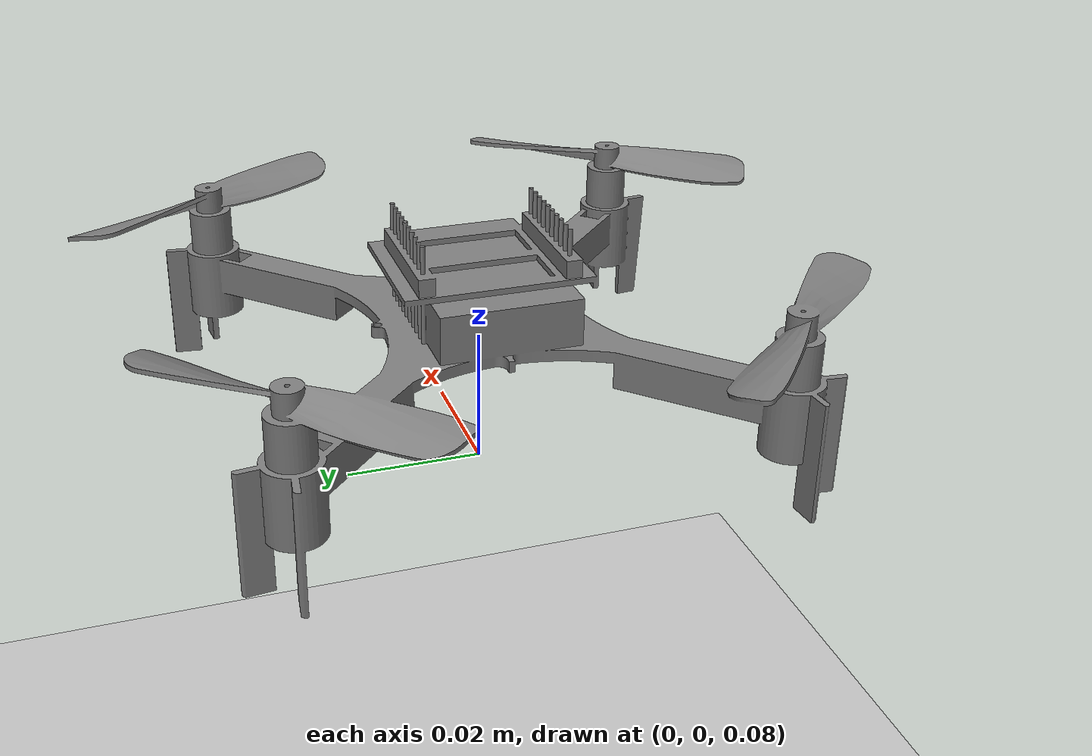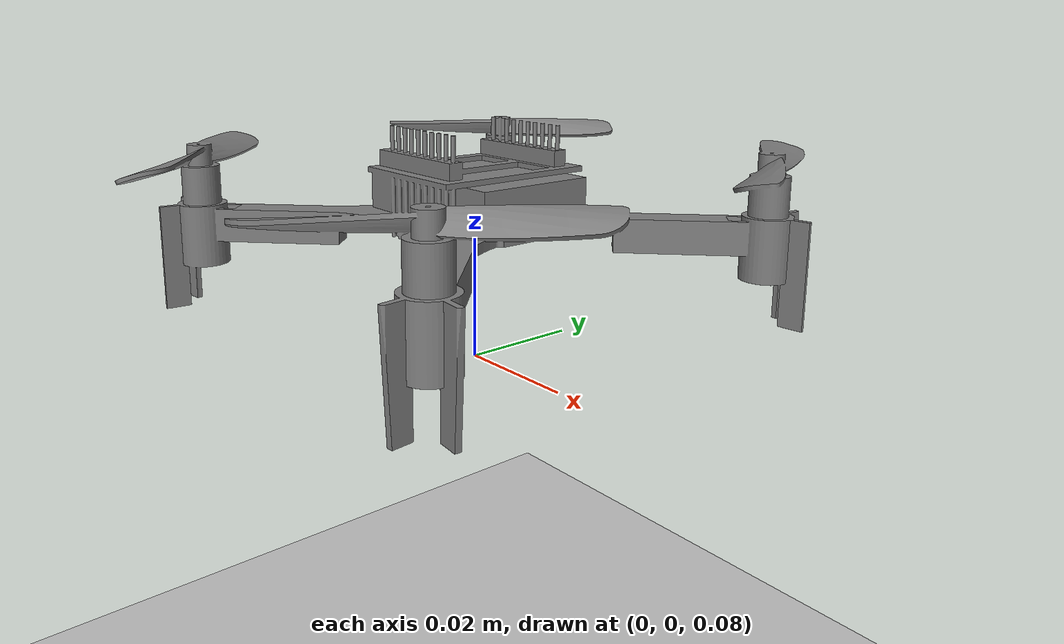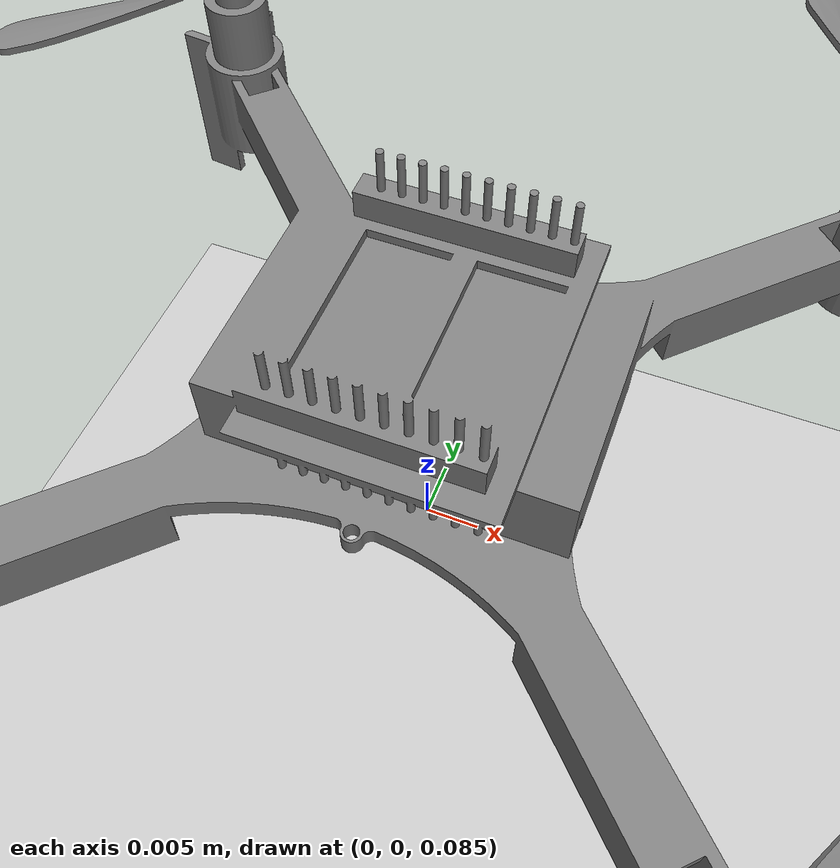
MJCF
<mujoco model="cf2x">

  <visual>
    <global offwidth="1280" offheight="720"/>
    <headlight diffuse="0.6 0.6 0.6" ambient="0.3 0.3 0.3" specular="0.0 0.0 0.0"/>
  </visual>

  <statistic center="0 0 0.1" extent="0.5"/>

  <option timestep="0.002" gravity="0 0 -9.81" integrator="RK4"/>

  <asset>
    <mesh name="cf2_mesh" file="cf2.stl" scale="1 1 1"/>

    <texture type="skybox" builtin="gradient"
             rgb1="0.4 0.6 0.8" rgb2="0.8 0.9 1.0"
             width="512" height="512"/>
    <texture name="grid" type="2d" builtin="checker"
             rgb1="0.7 0.7 0.7" rgb2="0.85 0.85 0.85"
             width="512" height="512"/>
    <material name="grid_mat" texture="grid"
              texrepeat="4 4" reflectance="0.1"/>
    <material name="drone_mat" rgba="0.5 0.5 0.5 1"
              specular="0.3" shininess="0.4"/>
  </asset>

  <worldbody>
    <geom name="floor" type="plane" size="5 5 0.1"
          material="grid_mat" condim="3"/>

    <body name="cf2x" pos="0 0 0.1">
      <freejoint name="root"/>

      <camera name="track_cam" mode="trackcom" pos="0 -0.5 0.3" xyaxes="1 0 0 0 1 2"/>

      <inertial pos="0 0 0" mass="0.027"
                diaginertia="1.4e-5 1.4e-5 2.17e-5"/>

      <geom name="visual" type="mesh" mesh="cf2_mesh"
            euler="0 0 0" material="drone_mat"
            contype="0" conaffinity="0"/>

      <geom name="collision" type="cylinder"
            size="0.06 0.0125"
            contype="1" conaffinity="1"
            rgba="0 0 0 0"/>

      <site name="rotor0" pos=" 0.028 -0.028 0" size="0.001"/>
      <site name="rotor1" pos="-0.028 -0.028 0" size="0.001"/>
      <site name="rotor2" pos="-0.028  0.028 0" size="0.001"/>
      <site name="rotor3" pos=" 0.028  0.028 0" size="0.001"/>

    </body>
  </worldbody>

  <actuator>
    <general name="rotor0" site="rotor0" gear="0 0 1 0 0 -0.02513"/>
    <general name="rotor1" site="rotor1" gear="0 0 1 0 0  0.02513"/>
    <general name="rotor2" site="rotor2" gear="0 0 1 0 0 -0.02513"/>
    <general name="rotor3" site="rotor3" gear="0 0 1 0 0  0.02513"/>
  </actuator>

</mujoco>
